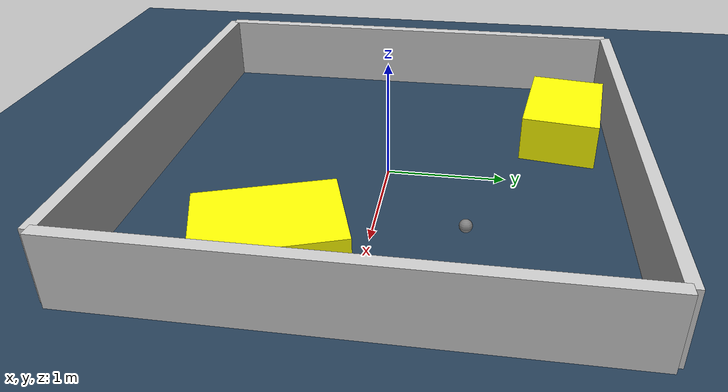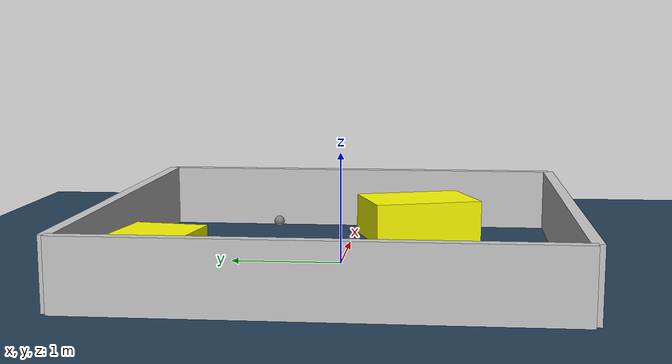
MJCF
<?xml version="1.0" ?>
<mujoco model="generated_environment">
  <option timestep="0.01" integrator="RK4" cone="elliptic"/>
  <default>
    <geom density="1"/>
  </default>
  <asset>
    <texture builtin="gradient" height="3072" rgb1="0.3 0.5 0.7" rgb2="0 0 0" type="skybox" width="512"/>
    <texture builtin="checker" height="300" mark="edge" markrgb="0.8 0.8 0.8" name="groundplane" rgb1="0.2 0.3 0.4" rgb2="0.1 0.2 0.3" type="2d" width="300"/>
    <material name="groundplane" reflectance="0.2" texrepeat="5 5" texture="groundplane" texuniform="true"/>
    <material name="robot" rgba="0.0 1.0 0.0 1"/>
  </asset>
  <worldbody>
    <light dir="0 0 -1" directional="true" pos="0 0 1.5"/>
    <geom condim="4" friction="1.0 0.005 0.001" material="groundplane" name="floor" size="0 0 0.05" type="plane"/>
    <body name="walls">
      <geom name="wall_1" condim="4" pos="-2.0 0.0 0.3" rgba="0.800000011920929 0.800000011920929 0.800000011920929 1.0" size="0.05 2.0 0.3" type="box"/>
      <geom name="wall_2" condim="4" pos="2.0 0.0 0.3" rgba="0.800000011920929 0.800000011920929 0.800000011920929 1.0" size="0.05 2.0 0.3" type="box"/>
      <geom name="wall_3" condim="4" pos="0.0 -2.0 0.3" rgba="0.800000011920929 0.800000011920929 0.800000011920929 1.0" size="2.0 0.05 0.3" type="box"/>
      <geom name="wall_4" condim="4" pos="0.0 2.0 0.3" rgba="0.800000011920929 0.800000011920929 0.800000011920929 1.0" size="2.0 0.05 0.3" type="box"/>
    </body>
    <body name="robot">
      <joint name="joint_x" type="slide" pos="0 0 0" axis="1 0 0"/>
      <joint name="joint_y" type="slide" pos="0 0 0" axis="0 1 0"/>
      <geom name="robot" type="sphere" pos="1.0081007963886086 0.7101514795507855 0.2" size="0.05" mass="5." friction="1.0 0.005 0.0001" condim="4"/>
      <site name="sensor_ball"/>
    </body>
    <body name="obstacle_1_movable">
      <geom name="obstacle_1_movable" condim="4" pos="-0.8291116156362204 1.5269106064081135 0.2" euler="0 0 261.5832853097865" friction="1.0 0.005 0.001" rgba="1 1 0 1" size="0.3289982080177267 0.4892695409990671 0.2" type="box" mass="0.1"/>
      <joint type="free"/>
    </body>
    <body name="obstacle_2_movable">
      <geom name="obstacle_2_movable" condim="4" pos="1.3558354828656625 -0.6556190762137275 0.2" euler="0 0 109.05939169374447" friction="1.0 0.005 0.001" rgba="1 1 0 1" size="0.5353923645878718 0.38548163382974476 0.2" type="box" mass="0.1"/>
      <joint type="free"/>
    </body>
  </worldbody>
  <actuator>
    <motor name="actuator_x" joint="joint_x" gear="1" ctrlrange="-1 1"/>
    <motor name="actuator_y" joint="joint_y" gear="1" ctrlrange="-1 1"/>
  </actuator>
</mujoco>
